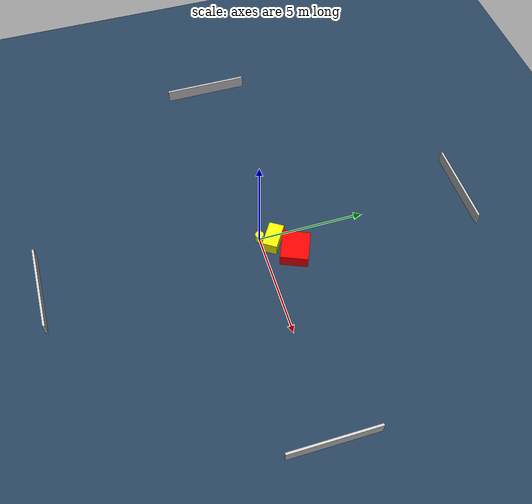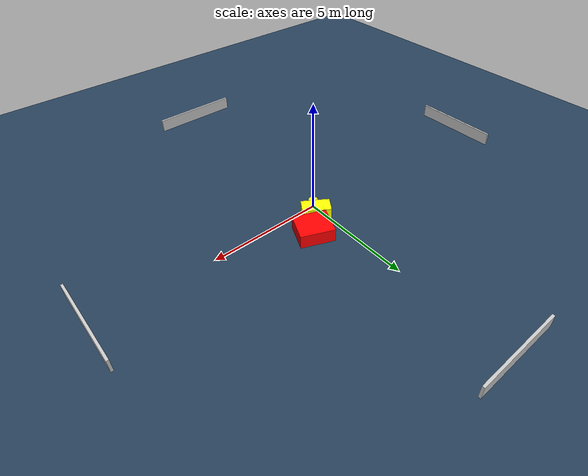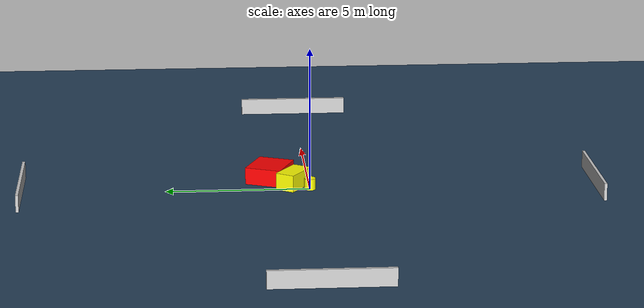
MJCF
<?xml version="1.0" ?>
<mujoco model="generated_environment">
  <option timestep="0.01" integrator="RK4" cone="elliptic"/>
  <default>
    <geom density="1"/>
  </default>
  <asset>
    <texture builtin="gradient" height="3072" name="skybox" rgb1="0.3 0.5 0.7" rgb2="0 0 0" type="skybox" width="512"/>
    <texture builtin="checker" height="300" name="groundplane" rgb1="0.2 0.3 0.4" rgb2="0.1 0.2 0.3" type="2d" width="300"/>
    <material name="groundplane" reflectance="0.2" texrepeat="5 5" texture="groundplane"/>
  </asset>
  <worldbody>
    <light dir="0 0 -1" directional="true" pos="0 0 1.5"/>
    <geom condim="3" friction="0.5 0.005 0.001" material="groundplane" name="floor" pos="0 0 0" size="0 0 0.05" type="plane"/>
    <body name="walls">
      <geom name="wall_1" condim="4" pos="-10.0 0.0 0.3" rgba="0.800000011920929 0.800000011920929 0.800000011920929 1.0" size="0.05 2.0 0.3" type="box"/>
      <geom name="wall_2" condim="4" pos="10.0 0.0 0.3" rgba="0.800000011920929 0.800000011920929 0.800000011920929 1.0" size="0.05 2.0 0.3" type="box"/>
      <geom name="wall_3" condim="4" pos="0.0 -10.0 0.3" rgba="0.800000011920929 0.800000011920929 0.800000011920929 1.0" size="2.0 0.05 0.3" type="box"/>
      <geom name="wall_4" condim="4" pos="0.0 10.0 0.3" rgba="0.800000011920929 0.800000011920929 0.800000011920929 1.0" size="2.0 0.05 0.3" type="box"/>
    </body>
    <body name="robot">
      <joint name="joint_x" type="slide" pos="0 0 0" axis="1 0 0"/>
      <joint name="joint_y" type="slide" pos="0 0 0" axis="0 1 0"/>
      <geom name="robot" type="cylinder" pos="0.0 0.0 0.2" size="0.2 0.2 0.0" mass="5.0" friction="1.0 0.005 0.0001" condim="4" rgba="1.0 1.0 0.0 1.0"/>
    </body>
    <body name="obstacle_1_movable">
      <geom name="obstacle_1_movable" condim="4" pos="0.3129419628719977 0.5528944440670949 0.3" euler="0 0 326.712022622476" friction="0.0 0.005 0.001" rgba="1.0 1.0 0.0 1.0" size="0.6193467350842334 0.34496722654839984 0.3" type="box" mass="0.1"/>
      <joint type="free"/>
    </body>
    <body name="obstacle_2_static">
      <geom name="obstacle_2_static" condim="4" pos="1.1337407150955565 1.3450255002901355 0.3" euler="0 0 247.05814957057697" friction="0.0 0.005 0.001" rgba="1.0 0.0 0.0 1.0" size="0.63997527166159 0.7340657126895913 0.3" type="box"/>
    </body>
  </worldbody>
  <actuator>
    <motor name="actuator_x" joint="joint_x" gear="1" ctrlrange="-1 1"/>
    <motor name="actuator_y" joint="joint_y" gear="1" ctrlrange="-1 1"/>
  </actuator>
</mujoco>
